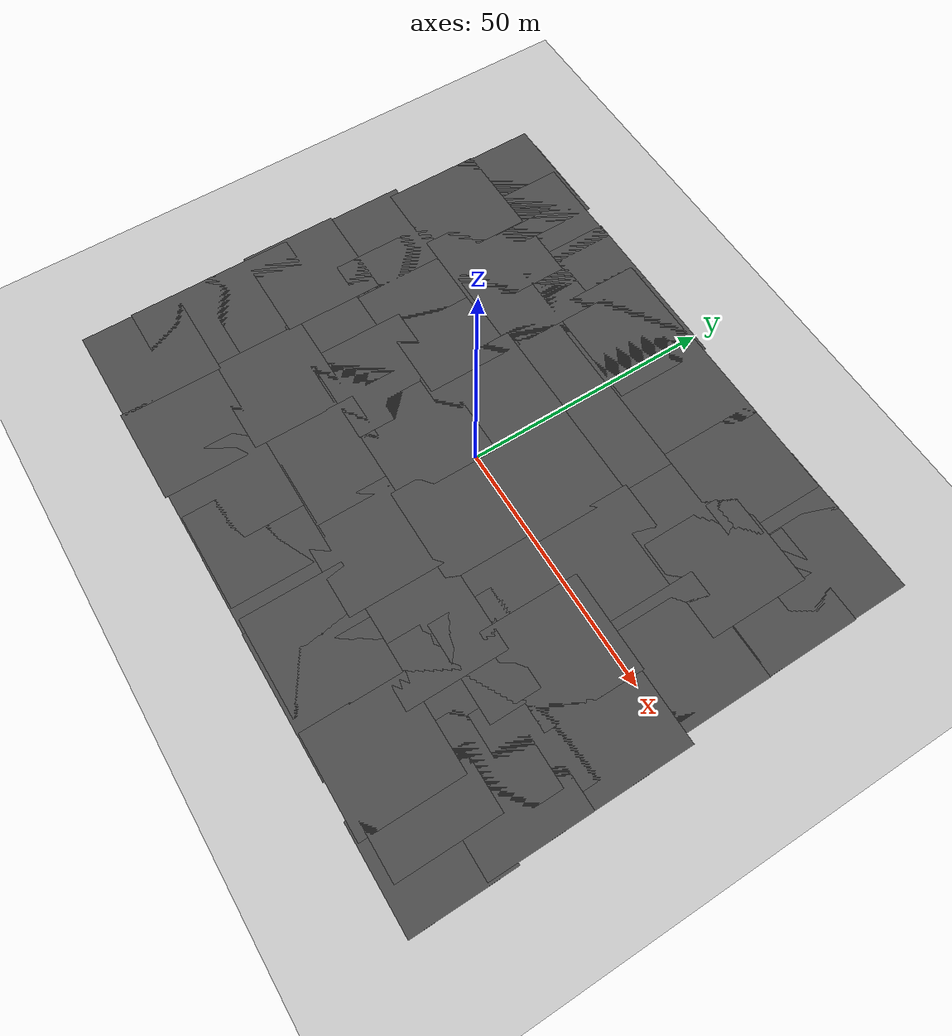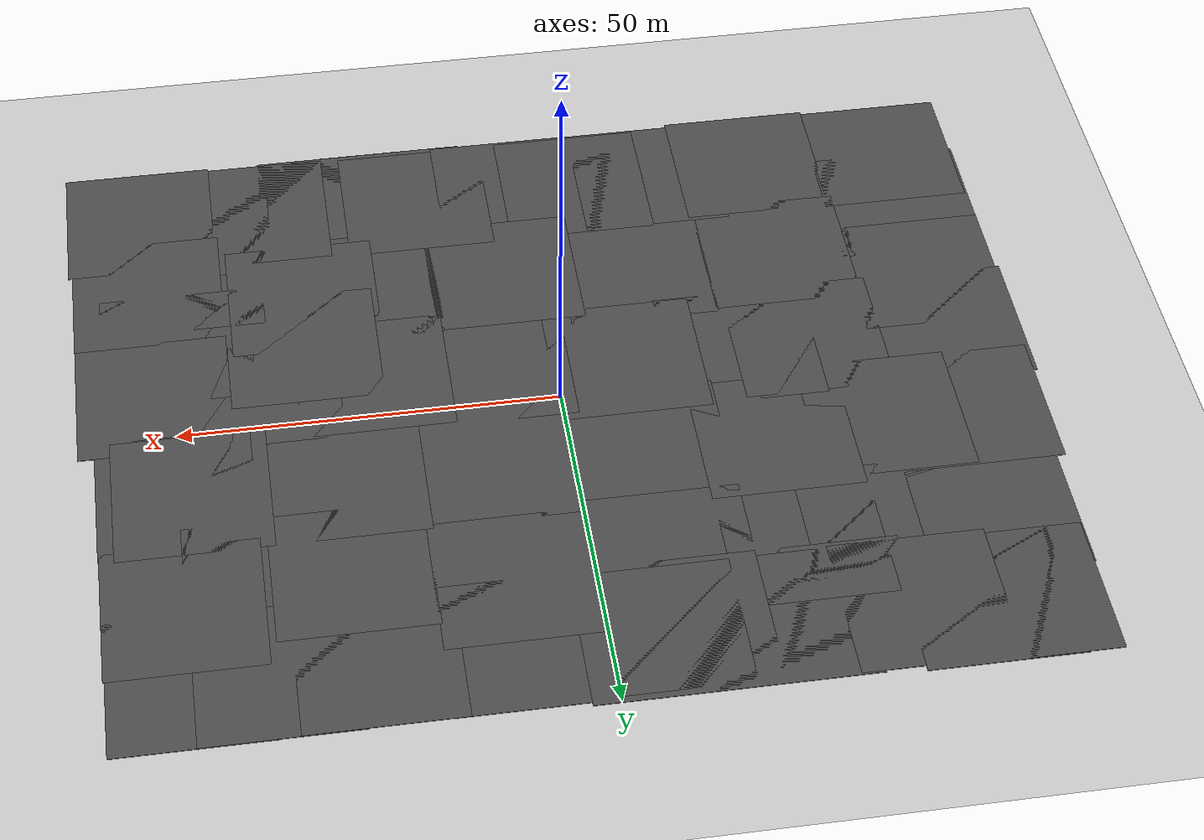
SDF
<sdf version="1.6">
 <world name="default">
  <light name="sun" type="directional">
   <pose>0 0 10 0 -0 0</pose>
   <diffuse>0.8 0.8 0.8 1</diffuse>
   <specular>0.2 0.2 0.2 1</specular>
   <attenuation>
    <range>1000</range>
    <constant>0.9</constant>
    <linear>0.01</linear>
    <quadratic>0.001</quadratic>
   </attenuation>
   <direction>-0.5 0.1 -0.9</direction>
  </light>
  <model name="ground_plane">
   <static>1</static>
   <link name="link">
    <collision name="collision">
     <geometry><plane><normal>0 0 1</normal><size>100 100</size></plane></geometry>
     <surface><friction><ode><mu>100</mu><mu2>50</mu2></ode></friction></surface>
    </collision>
    <visual name="visual">
     <cast_shadows>0</cast_shadows>
     <geometry><plane><normal>0 0 1</normal><size>100 100</size></plane></geometry>
     <material>
      <script><uri>file://media/materials/scripts/gazebo.material</uri><name>Gazebo/Grey</name></script>
     </material>
    </visual>
   </link>
  </model>
  <gravity>0 0 -9.8</gravity>
  <magnetic_field>6e-06 2.3e-05 -4.2e-05</magnetic_field>
  <atmosphere type="adiabatic"/>
  <physics name="default_physics" default="0" type="ode">
   <max_step_size>0.001</max_step_size>
   <real_time_factor>1</real_time_factor>
   <real_time_update_rate>1000</real_time_update_rate>
  </physics>
  <scene><ambient>0.4 0.4 0.4 1</ambient><background>0.7 0.7 0.7 1</background><shadows>1</shadows></scene>
  <audio><device>default</device></audio>
  <spherical_coordinates>
   <surface_model>EARTH_WGS84</surface_model>
   <latitude_deg>0</latitude_deg>
   <longitude_deg>0</longitude_deg>
   <elevation>0</elevation>
   <heading_deg>0</heading_deg>
  </spherical_coordinates>
  <model name="asphalt_plane">
   <static>1</static>
   <link name="link">
    <collision name="collision"><geometry><box><size>20 20 0.1</size></box></geometry></collision>
    <visual name="visual">
     <cast_shadows>0</cast_shadows>
     <geometry><box><size>20 20 0.1</size></box></geometry>
     <material>
      <script>
       <uri>model://asphalt_plane/materials/scripts</uri>
       <uri>model://asphalt_plane/materials/textures</uri>
       <name>vrc/asphalt</name>
      </script>
     </material>
    </visual>
   </link>
   <pose>9.94556 10.0179 0 0 -0 0</pose>
  </model>
  <model name="asphalt_plane_0">
   <static>1</static>
   <link name="link">
    <collision name="collision"><geometry><box><size>20 20 0.1</size></box></geometry></collision>
    <visual name="visual">
     <cast_shadows>0</cast_shadows>
     <geometry><box><size>20 20 0.1</size></box></geometry>
     <material>
      <script>
       <uri>model://asphalt_plane/materials/scripts</uri>
       <uri>model://asphalt_plane/materials/textures</uri>
       <name>vrc/asphalt</name>
      </script>
     </material>
    </visual>
   </link>
   <pose>28.9695 10.1396 0 0 -0 0</pose>
  </model>
  <model name="asphalt_plane_clone">
   <static>1</static>
   <link name="link">
    <collision name="collision"><geometry><box><size>20 20 0.1</size></box></geometry></collision>
    <visual name="visual">
     <cast_shadows>0</cast_shadows>
     <geometry><box><size>20 20 0.1</size></box></geometry>
     <material>
      <script>
       <uri>model://asphalt_plane/materials/scripts</uri>
       <uri>model://asphalt_plane/materials/textures</uri>
       <name>vrc/asphalt</name>
      </script>
     </material>
    </visual>
   </link>
   <pose>48.6117 10.1334 0 0 -0 0</pose>
  </model>
  <model name="asphalt_plane_clone_0">
   <static>1</static>
   <link name="link">
    <collision name="collision"><geometry><box><size>20 20 0.1</size></box></geometry></collision>
    <visual name="visual">
     <cast_shadows>0</cast_shadows>
     <geometry><box><size>20 20 0.1</size></box></geometry>
     <material>
      <script>
       <uri>model://asphalt_plane/materials/scripts</uri>
       <uri>model://asphalt_plane/materials/textures</uri>
       <name>vrc/asphalt</name>
      </script>
     </material>
    </visual>
   </link>
   <pose>9.90741 29.4526 0 0 -0 0</pose>
  </model>
  <model name="asphalt_plane_clone_1">
   <static>1</static>
   <link name="link">
    <collision name="collision"><geometry><box><size>20 20 0.1</size></box></geometry></collision>
    <visual name="visual">
     <cast_shadows>0</cast_shadows>
     <geometry><box><size>20 20 0.1</size></box></geometry>
     <material>
      <script>
       <uri>model://asphalt_plane/materials/scripts</uri>
       <uri>model://asphalt_plane/materials/textures</uri>
       <name>vrc/asphalt</name>
      </script>
     </material>
    </visual>
   </link>
   <pose>9.72617 39.7367 0 0 -0 0</pose>
  </model>
  <model name="asphalt_plane_clone_2">
   <static>1</static>
   <link name="link">
    <collision name="collision"><geometry><box><size>20 20 0.1</size></box></geometry></collision>
    <visual name="visual">
     <cast_shadows>0</cast_shadows>
     <geometry><box><size>20 20 0.1</size></box></geometry>
     <material>
      <script>
       <uri>model://asphalt_plane/materials/scripts</uri>
       <uri>model://asphalt_plane/materials/textures</uri>
       <name>vrc/asphalt</name>
      </script>
     </material>
    </visual>
   </link>
   <pose>27.7603 39.7037 0 0 -0 0</pose>
  </model>
  <model name="asphalt_plane_clone_3">
   <static>1</static>
   <link name="link">
    <collision name="collision"><geometry><box><size>20 20 0.1</size></box></geometry></collision>
    <visual name="visual">
     <cast_shadows>0</cast_shadows>
     <geometry><box><size>20 20 0.1</size></box></geometry>
     <material>
      <script>
       <uri>model://asphalt_plane/materials/scripts</uri>
       <uri>model://asphalt_plane/materials/textures</uri>
       <name>vrc/asphalt</name>
      </script>
     </material>
    </visual>
   </link>
   <pose>39.8939 39.8008 0 0 -0 0</pose>
  </model>
  <model name="asphalt_plane_clone_4">
   <static>1</static>
   <link name="link">
    <collision name="collision"><geometry><box><size>20 20 0.1</size></box></geometry></collision>
    <visual name="visual">
     <cast_shadows>0</cast_shadows>
     <geometry><box><size>20 20 0.1</size></box></geometry>
     <material>
      <script>
       <uri>model://asphalt_plane/materials/scripts</uri>
       <uri>model://asphalt_plane/materials/textures</uri>
       <name>vrc/asphalt</name>
      </script>
     </material>
    </visual>
   </link>
   <pose>50.2931 39.8649 0 0 -0 0</pose>
  </model>
  <model name="asphalt_plane_clone_5">
   <static>1</static>
   <link name="link">
    <collision name="collision"><geometry><box><size>20 20 0.1</size></box></geometry></collision>
    <visual name="visual">
     <cast_shadows>0</cast_shadows>
     <geometry><box><size>20 20 0.1</size></box></geometry>
     <material>
      <script>
       <uri>model://asphalt_plane/materials/scripts</uri>
       <uri>model://asphalt_plane/materials/textures</uri>
       <name>vrc/asphalt</name>
      </script>
     </material>
    </visual>
   </link>
   <pose>50.4864 28.6532 0 0 -0 0</pose>
  </model>
  <model name="asphalt_plane_clone_6">
   <static>1</static>
   <link name="link">
    <collision name="collision"><geometry><box><size>20 20 0.1</size></box></geometry></collision>
    <visual name="visual">
     <cast_shadows>0</cast_shadows>
     <geometry><box><size>20 20 0.1</size></box></geometry>
     <material>
      <script>
       <uri>model://asphalt_plane/materials/scripts</uri>
       <uri>model://asphalt_plane/materials/textures</uri>
       <name>vrc/asphalt</name>
      </script>
     </material>
    </visual>
   </link>
   <pose>29.6268 25.404 0 0 -0 0</pose>
  </model>
  <model name="asphalt_plane_clone_7">
   <static>1</static>
   <link name="link">
    <collision name="collision"><geometry><box><size>20 20 0.1</size></box></geometry></collision>
    <visual name="visual">
     <cast_shadows>0</cast_shadows>
     <geometry><box><size>20 20 0.1</size></box></geometry>
     <material>
      <script>
       <uri>model://asphalt_plane/materials/scripts</uri>
       <uri>model://asphalt_plane/materials/textures</uri>
       <name>vrc/asphalt</name>
      </script>
     </material>
    </visual>
   </link>
   <pose>40.2488 25.9331 0 0 -0 0</pose>
  </model>
  <model name="asphalt_plane_clone_8">
   <static>1</static>
   <link name="link">
    <collision name="collision"><geometry><box><size>20 20 0.1</size></box></geometry></collision>
    <visual name="visual">
     <cast_shadows>0</cast_shadows>
     <geometry><box><size>20 20 0.1</size></box></geometry>
     <material>
      <script>
       <uri>model://asphalt_plane/materials/scripts</uri>
       <uri>model://asphalt_plane/materials/textures</uri>
       <name>vrc/asphalt</name>
      </script>
     </material>
    </visual>
   </link>
   <pose>50.5794 9.93495 0 0 -0 0</pose>
  </model>
  <model name="asphalt_plane_1">
   <static>1</static>
   <link name="link">
    <collision name="collision"><geometry><box><size>20 20 0.1</size></box></geometry></collision>
    <visual name="visual">
     <cast_shadows>0</cast_shadows>
     <geometry><box><size>20 20 0.1</size></box></geometry>
     <material>
      <script>
       <uri>model://asphalt_plane/materials/scripts</uri>
       <uri>model://asphalt_plane/materials/textures</uri>
       <name>vrc/asphalt</name>
      </script>
     </material>
    </visual>
   </link>
   <pose>-9.89743 9.70966 0 0 -0 0</pose>
  </model>
  <model name="asphalt_plane_1_clone">
   <static>1</static>
   <link name="link">
    <collision name="collision"><geometry><box><size>20 20 0.1</size></box></geometry></collision>
    <visual name="visual">
     <cast_shadows>0</cast_shadows>
     <geometry><box><size>20 20 0.1</size></box></geometry>
     <material>
      <script>
       <uri>model://asphalt_plane/materials/scripts</uri>
       <uri>model://asphalt_plane/materials/textures</uri>
       <name>vrc/asphalt</name>
      </script>
     </material>
    </visual>
   </link>
   <pose>-9.99884 28.2503 0 0 -0 0</pose>
  </model>
  <model name="asphalt_plane_1_clone_0">
   <static>1</static>
   <link name="link">
    <collision name="collision"><geometry><box><size>20 20 0.1</size></box></geometry></collision>
    <visual name="visual">
     <cast_shadows>0</cast_shadows>
     <geometry><box><size>20 20 0.1</size></box></geometry>
     <material>
      <script>
       <uri>model://asphalt_plane/materials/scripts</uri>
       <uri>model://asphalt_plane/materials/textures</uri>
       <name>vrc/asphalt</name>
      </script>
     </material>
    </visual>
   </link>
   <pose>-9.90688 39.3681 0 0 -0 0</pose>
  </model>
  <model name="asphalt_plane_1_clone_1">
   <static>1</static>
   <link name="link">
    <collision name="collision"><geometry><box><size>20 20 0.1</size></box></geometry></collision>
    <visual name="visual">
     <cast_shadows>0</cast_shadows>
     <geometry><box><size>20 20 0.1</size></box></geometry>
     <material>
      <script>
       <uri>model://asphalt_plane/materials/scripts</uri>
       <uri>model://asphalt_plane/materials/textures</uri>
       <name>vrc/asphalt</name>
      </script>
     </material>
    </visual>
   </link>
   <pose>-27.8869 39.4852 0 0 -0 0</pose>
  </model>
  <model name="asphalt_plane_1_clone_2">
   <static>1</static>
   <link name="link">
    <collision name="collision"><geometry><box><size>20 20 0.1</size></box></geometry></collision>
    <visual name="visual">
     <cast_shadows>0</cast_shadows>
     <geometry><box><size>20 20 0.1</size></box></geometry>
     <material>
      <script>
       <uri>model://asphalt_plane/materials/scripts</uri>
       <uri>model://asphalt_plane/materials/textures</uri>
       <name>vrc/asphalt</name>
      </script>
     </material>
    </visual>
   </link>
   <pose>-38.8063 39.9788 0 0 -0 0</pose>
  </model>
  <model name="asphalt_plane_1_clone_3">
   <static>1</static>
   <link name="link">
    <collision name="collision"><geometry><box><size>20 20 0.1</size></box></geometry></collision>
    <visual name="visual">
     <cast_shadows>0</cast_shadows>
     <geometry><box><size>20 20 0.1</size></box></geometry>
     <material>
      <script>
       <uri>model://asphalt_plane/materials/scripts</uri>
       <uri>model://asphalt_plane/materials/textures</uri>
       <name>vrc/asphalt</name>
      </script>
     </material>
    </visual>
   </link>
   <pose>-46.6677 40.7361 0 0 -0 0</pose>
  </model>
  <model name="asphalt_plane_1_clone_4">
   <static>1</static>
   <link name="link">
    <collision name="collision"><geometry><box><size>20 20 0.1</size></box></geometry></collision>
    <visual name="visual">
     <cast_shadows>0</cast_shadows>
     <geometry><box><size>20 20 0.1</size></box></geometry>
     <material>
      <script>
       <uri>model://asphalt_plane/materials/scripts</uri>
       <uri>model://asphalt_plane/materials/textures</uri>
       <name>vrc/asphalt</name>
      </script>
     </material>
    </visual>
   </link>
   <pose>-51.0642 40.6241 0 0 -0 0</pose>
  </model>
  <model name="asphalt_plane_1_clone_5">
   <static>1</static>
   <link name="link">
    <collision name="collision"><geometry><box><size>20 20 0.1</size></box></geometry></collision>
    <visual name="visual">
     <cast_shadows>0</cast_shadows>
     <geometry><box><size>20 20 0.1</size></box></geometry>
     <material>
      <script>
       <uri>model://asphalt_plane/materials/scripts</uri>
       <uri>model://asphalt_plane/materials/textures</uri>
       <name>vrc/asphalt</name>
      </script>
     </material>
    </visual>
   </link>
   <pose>-51.2435 27.2029 0 0 -0 0</pose>
  </model>
  <model name="asphalt_plane_1_clone_6">
   <static>1</static>
   <link name="link">
    <collision name="collision"><geometry><box><size>20 20 0.1</size></box></geometry></collision>
    <visual name="visual">
     <cast_shadows>0</cast_shadows>
     <geometry><box><size>20 20 0.1</size></box></geometry>
     <material>
      <script>
       <uri>model://asphalt_plane/materials/scripts</uri>
       <uri>model://asphalt_plane/materials/textures</uri>
       <name>vrc/asphalt</name>
      </script>
     </material>
    </visual>
   </link>
   <pose>-36.9175 27.3759 0 0 -0 0</pose>
  </model>
  <model name="asphalt_plane_1_clone_7">
   <static>1</static>
   <link name="link">
    <collision name="collision"><geometry><box><size>20 20 0.1</size></box></geometry></collision>
    <visual name="visual">
     <cast_shadows>0</cast_shadows>
     <geometry><box><size>20 20 0.1</size></box></geometry>
     <material>
      <script>
       <uri>model://asphalt_plane/materials/scripts</uri>
       <uri>model://asphalt_plane/materials/textures</uri>
       <name>vrc/asphalt</name>
      </script>
     </material>
    </visual>
   </link>
   <pose>-26.43 28.2152 0 0 -0 0</pose>
  </model>
  <model name="asphalt_plane_1_clone_8">
   <static>1</static>
   <link name="link">
    <collision name="collision"><geometry><box><size>20 20 0.1</size></box></geometry></collision>
    <visual name="visual">
     <cast_shadows>0</cast_shadows>
     <geometry><box><size>20 20 0.1</size></box></geometry>
     <material>
      <script>
       <uri>model://asphalt_plane/materials/scripts</uri>
       <uri>model://asphalt_plane/materials/textures</uri>
       <name>vrc/asphalt</name>
      </script>
     </material>
    </visual>
   </link>
   <pose>-26.3245 10.2479 0 0 -0 0</pose>
  </model>
  <model name="asphalt_plane_1_clone_9">
   <static>1</static>
   <link name="link">
    <collision name="collision"><geometry><box><size>20 20 0.1</size></box></geometry></collision>
    <visual name="visual">
     <cast_shadows>0</cast_shadows>
     <geometry><box><size>20 20 0.1</size></box></geometry>
     <material>
      <script>
       <uri>model://asphalt_plane/materials/scripts</uri>
       <uri>model://asphalt_plane/materials/textures</uri>
       <name>vrc/asphalt</name>
      </script>
     </material>
    </visual>
   </link>
   <pose>-41.1698 8.91625 0 0 -0 0</pose>
  </model>
  <model name="asphalt_plane_1_clone_10">
   <static>1</static>
   <link name="link">
    <collision name="collision"><geometry><box><size>20 20 0.1</size></box></geometry></collision>
    <visual name="visual">
     <cast_shadows>0</cast_shadows>
     <geometry><box><size>20 20 0.1</size></box></geometry>
     <material>
      <script>
       <uri>model://asphalt_plane/materials/scripts</uri>
       <uri>model://asphalt_plane/materials/textures</uri>
       <name>vrc/asphalt</name>
      </script>
     </material>
    </visual>
   </link>
   <pose>-52.4427 9.20355 0 0 -0 0</pose>
  </model>
  <model name="asphalt_plane_1_clone_11">
   <static>1</static>
   <link name="link">
    <collision name="collision"><geometry><box><size>20 20 0.1</size></box></geometry></collision>
    <visual name="visual">
     <cast_shadows>0</cast_shadows>
     <geometry><box><size>20 20 0.1</size></box></geometry>
     <material>
      <script>
       <uri>model://asphalt_plane/materials/scripts</uri>
       <uri>model://asphalt_plane/materials/textures</uri>
       <name>vrc/asphalt</name>
      </script>
     </material>
    </visual>
   </link>
   <pose>-52.9447 -6.06653 0 0 -0 0</pose>
  </model>
  <model name="asphalt_plane_1_clone_12">
   <static>1</static>
   <link name="link">
    <collision name="collision"><geometry><box><size>20 20 0.1</size></box></geometry></collision>
    <visual name="visual">
     <cast_shadows>0</cast_shadows>
     <geometry><box><size>20 20 0.1</size></box></geometry>
     <material>
      <script>
       <uri>model://asphalt_plane/materials/scripts</uri>
       <uri>model://asphalt_plane/materials/textures</uri>
       <name>vrc/asphalt</name>
      </script>
     </material>
    </visual>
   </link>
   <pose>-52.4437 -16.7134 0 0 -0 0</pose>
  </model>
  <model name="asphalt_plane_1_clone_13">
   <static>1</static>
   <link name="link">
    <collision name="collision"><geometry><box><size>20 20 0.1</size></box></geometry></collision>
    <visual name="visual">
     <cast_shadows>0</cast_shadows>
     <geometry><box><size>20 20 0.1</size></box></geometry>
     <material>
      <script>
       <uri>model://asphalt_plane/materials/scripts</uri>
       <uri>model://asphalt_plane/materials/textures</uri>
       <name>vrc/asphalt</name>
      </script>
     </material>
    </visual>
   </link>
   <pose>-52.4144 -30.9668 0 0 -0 0</pose>
  </model>
  <model name="asphalt_plane_1_clone_14">
   <static>1</static>
   <link name="link">
    <collision name="collision"><geometry><box><size>20 20 0.1</size></box></geometry></collision>
    <visual name="visual">
     <cast_shadows>0</cast_shadows>
     <geometry><box><size>20 20 0.1</size></box></geometry>
     <material>
      <script>
       <uri>model://asphalt_plane/materials/scripts</uri>
       <uri>model://asphalt_plane/materials/textures</uri>
       <name>vrc/asphalt</name>
      </script>
     </material>
    </visual>
   </link>
   <pose>-52.1095 -41.3911 0 0 -0 0</pose>
  </model>
  <model name="asphalt_plane_1_clone_15">
   <static>1</static>
   <link name="link">
    <collision name="collision"><geometry><box><size>20 20 0.1</size></box></geometry></collision>
    <visual name="visual">
     <cast_shadows>0</cast_shadows>
     <geometry><box><size>20 20 0.1</size></box></geometry>
     <material>
      <script>
       <uri>model://asphalt_plane/materials/scripts</uri>
       <uri>model://asphalt_plane/materials/textures</uri>
       <name>vrc/asphalt</name>
      </script>
     </material>
    </visual>
   </link>
   <pose>-32.6987 -41.8431 0 0 -0 0</pose>
  </model>
  <model name="asphalt_plane_1_clone_16">
   <static>1</static>
   <link name="link">
    <collision name="collision"><geometry><box><size>20 20 0.1</size></box></geometry></collision>
    <visual name="visual">
     <cast_shadows>0</cast_shadows>
     <geometry><box><size>20 20 0.1</size></box></geometry>
     <material>
      <script>
       <uri>model://asphalt_plane/materials/scripts</uri>
       <uri>model://asphalt_plane/materials/textures</uri>
       <name>vrc/asphalt</name>
      </script>
     </material>
    </visual>
   </link>
   <pose>-18.2644 -41.2859 0 0 -0 0</pose>
  </model>
  <model name="asphalt_plane_1_clone_17">
   <static>1</static>
   <link name="link">
    <collision name="collision"><geometry><box><size>20 20 0.1</size></box></geometry></collision>
    <visual name="visual">
     <cast_shadows>0</cast_shadows>
     <geometry><box><size>20 20 0.1</size></box></geometry>
     <material>
      <script>
       <uri>model://asphalt_plane/materials/scripts</uri>
       <uri>model://asphalt_plane/materials/textures</uri>
       <name>vrc/asphalt</name>
      </script>
     </material>
    </visual>
   </link>
   <pose>-7.62501 -41.016 0 0 -0 0</pose>
  </model>
  <model name="asphalt_plane_1_clone_18">
   <static>1</static>
   <link name="link">
    <collision name="collision"><geometry><box><size>20 20 0.1</size></box></geometry></collision>
    <visual name="visual">
     <cast_shadows>0</cast_shadows>
     <geometry><box><size>20 20 0.1</size></box></geometry>
     <material>
      <script>
       <uri>model://asphalt_plane/materials/scripts</uri>
       <uri>model://asphalt_plane/materials/textures</uri>
       <name>vrc/asphalt</name>
      </script>
     </material>
    </visual>
   </link>
   <pose>1.50892 -41.3548 0 0 -0 0</pose>
  </model>
  <model name="asphalt_plane_1_clone_19">
   <static>1</static>
   <link name="link">
    <collision name="collision"><geometry><box><size>20 20 0.1</size></box></geometry></collision>
    <visual name="visual">
     <cast_shadows>0</cast_shadows>
     <geometry><box><size>20 20 0.1</size></box></geometry>
     <material>
      <script>
       <uri>model://asphalt_plane/materials/scripts</uri>
       <uri>model://asphalt_plane/materials/textures</uri>
       <name>vrc/asphalt</name>
      </script>
     </material>
    </visual>
   </link>
   <pose>14.8033 -40.8273 0 0 -0 0</pose>
  </model>
  <model name="asphalt_plane_1_clone_20">
   <static>1</static>
   <link name="link">
    <collision name="collision"><geometry><box><size>20 20 0.1</size></box></geometry></collision>
    <visual name="visual">
     <cast_shadows>0</cast_shadows>
     <geometry><box><size>20 20 0.1</size></box></geometry>
     <material>
      <script>
       <uri>model://asphalt_plane/materials/scripts</uri>
       <uri>model://asphalt_plane/materials/textures</uri>
       <name>vrc/asphalt</name>
      </script>
     </material>
    </visual>
   </link>
   <pose>26.2268 -41.4878 0 0 -0 0</pose>
  </model>
  <model name="asphalt_plane_1_clone_21">
   <static>1</static>
   <link name="link">
    <collision name="collision"><geometry><box><size>20 20 0.1</size></box></geometry></collision>
    <visual name="visual">
     <cast_shadows>0</cast_shadows>
     <geometry><box><size>20 20 0.1</size></box></geometry>
     <material>
      <script>
       <uri>model://asphalt_plane/materials/scripts</uri>
       <uri>model://asphalt_plane/materials/textures</uri>
       <name>vrc/asphalt</name>
      </script>
     </material>
    </visual>
   </link>
   <pose>37.2461 -41.2077 0 0 -0 0</pose>
  </model>
  <model name="asphalt_plane_1_clone_22">
   <static>1</static>
   <link name="link">
    <collision name="collision"><geometry><box><size>20 20 0.1</size></box></geometry></collision>
    <visual name="visual">
     <cast_shadows>0</cast_shadows>
     <geometry><box><size>20 20 0.1</size></box></geometry>
     <material>
      <script>
       <uri>model://asphalt_plane/materials/scripts</uri>
       <uri>model://asphalt_plane/materials/textures</uri>
       <name>vrc/asphalt</name>
      </script>
     </material>
    </visual>
   </link>
   <pose>45.3771 -39.4809 0 0 -0 0</pose>
  </model>
  <model name="asphalt_plane_1_clone_23">
   <static>1</static>
   <link name="link">
    <collision name="collision"><geometry><box><size>20 20 0.1</size></box></geometry></collision>
    <visual name="visual">
     <cast_shadows>0</cast_shadows>
     <geometry><box><size>20 20 0.1</size></box></geometry>
     <material>
      <script>
       <uri>model://asphalt_plane/materials/scripts</uri>
       <uri>model://asphalt_plane/materials/textures</uri>
       <name>vrc/asphalt</name>
      </script>
     </material>
    </visual>
   </link>
   <pose>47.2475 -29.3834 0 0 -0 0</pose>
  </model>
  <model name="asphalt_plane_1_clone_24">
   <static>1</static>
   <link name="link">
    <collision name="collision"><geometry><box><size>20 20 0.1</size></box></geometry></collision>
    <visual name="visual">
     <cast_shadows>0</cast_shadows>
     <geometry><box><size>20 20 0.1</size></box></geometry>
     <material>
      <script>
       <uri>model://asphalt_plane/materials/scripts</uri>
       <uri>model://asphalt_plane/materials/textures</uri>
       <name>vrc/asphalt</name>
      </script>
     </material>
    </visual>
   </link>
   <pose>49.249 -16.2267 0 0 -0 0</pose>
  </model>
  <model name="asphalt_plane_1_clone_25">
   <static>1</static>
   <link name="link">
    <collision name="collision"><geometry><box><size>20 20 0.1</size></box></geometry></collision>
    <visual name="visual">
     <cast_shadows>0</cast_shadows>
     <geometry><box><size>20 20 0.1</size></box></geometry>
     <material>
      <script>
       <uri>model://asphalt_plane/materials/scripts</uri>
       <uri>model://asphalt_plane/materials/textures</uri>
       <name>vrc/asphalt</name>
      </script>
     </material>
    </visual>
   </link>
   <pose>52.6802 -7.57688 0 0 -0 0</pose>
  </model>
  <model name="asphalt_plane_1_clone_26">
   <static>1</static>
   <link name="link">
    <collision name="collision"><geometry><box><size>20 20 0.1</size></box></geometry></collision>
    <visual name="visual">
     <cast_shadows>0</cast_shadows>
     <geometry><box><size>20 20 0.1</size></box></geometry>
     <material>
      <script>
       <uri>model://asphalt_plane/materials/scripts</uri>
       <uri>model://asphalt_plane/materials/textures</uri>
       <name>vrc/asphalt</name>
      </script>
     </material>
    </visual>
   </link>
   <pose>38.377 -7.17767 0 0 -0 0</pose>
  </model>
  <model name="asphalt_plane_1_clone_27">
   <static>1</static>
   <link name="link">
    <collision name="collision"><geometry><box><size>20 20 0.1</size></box></geometry></collision>
    <visual name="visual">
     <cast_shadows>0</cast_shadows>
     <geometry><box><size>20 20 0.1</size></box></geometry>
     <material>
      <script>
       <uri>model://asphalt_plane/materials/scripts</uri>
       <uri>model://asphalt_plane/materials/textures</uri>
       <name>vrc/asphalt</name>
      </script>
     </material>
    </visual>
   </link>
   <pose>32.6221 -13.9828 0 0 -0 0</pose>
  </model>
  <model name="asphalt_plane_1_clone_28">
   <static>1</static>
   <link name="link">
    <collision name="collision"><geometry><box><size>20 20 0.1</size></box></geometry></collision>
    <visual name="visual">
     <cast_shadows>0</cast_shadows>
     <geometry><box><size>20 20 0.1</size></box></geometry>
     <material>
      <script>
       <uri>model://asphalt_plane/materials/scripts</uri>
       <uri>model://asphalt_plane/materials/textures</uri>
       <name>vrc/asphalt</name>
      </script>
     </material>
    </visual>
   </link>
   <pose>31.8923 -23.5073 0 0 -0 0</pose>
  </model>
  <model name="asphalt_plane_1_clone_29">
   <static>1</static>
   <link name="link">
    <collision name="collision"><geometry><box><size>20 20 0.1</size></box></geometry></collision>
    <visual name="visual">
     <cast_shadows>0</cast_shadows>
     <geometry><box><size>20 20 0.1</size></box></geometry>
     <material>
      <script>
       <uri>model://asphalt_plane/materials/scripts</uri>
       <uri>model://asphalt_plane/materials/textures</uri>
       <name>vrc/asphalt</name>
      </script>
     </material>
    </visual>
   </link>
   <pose>23.5419 -24.4809 0 0 -0 0</pose>
  </model>
  <model name="asphalt_plane_1_clone_30">
   <static>1</static>
   <link name="link">
    <collision name="collision"><geometry><box><size>20 20 0.1</size></box></geometry></collision>
    <visual name="visual">
     <cast_shadows>0</cast_shadows>
     <geometry><box><size>20 20 0.1</size></box></geometry>
     <material>
      <script>
       <uri>model://asphalt_plane/materials/scripts</uri>
       <uri>model://asphalt_plane/materials/textures</uri>
       <name>vrc/asphalt</name>
      </script>
     </material>
    </visual>
   </link>
   <pose>23.9026 -7.5445 0 0 -0 0</pose>
  </model>
  <model name="asphalt_plane_1_clone_31">
   <static>1</static>
   <link name="link">
    <collision name="collision"><geometry><box><size>20 20 0.1</size></box></geometry></collision>
    <visual name="visual">
     <cast_shadows>0</cast_shadows>
     <geometry><box><size>20 20 0.1</size></box></geometry>
     <material>
      <script>
       <uri>model://asphalt_plane/materials/scripts</uri>
       <uri>model://asphalt_plane/materials/textures</uri>
       <name>vrc/asphalt</name>
      </script>
     </material>
    </visual>
   </link>
   <pose>8 -7 0 0 -0 0</pose>
  </model>
  <model name="asphalt_plane_1_clone_32">
   <static>1</static>
   <link name="link">
    <collision name="collision"><geometry><box><size>20 20 0.1</size></box></geometry></collision>
    <visual name="visual">
     <cast_shadows>0</cast_shadows>
     <geometry><box><size>20 20 0.1</size></box></geometry>
     <material>
      <script>
       <uri>model://asphalt_plane/materials/scripts</uri>
       <uri>model://asphalt_plane/materials/textures</uri>
       <name>vrc/asphalt</name>
      </script>
     </material>
    </visual>
   </link>
   <pose>4.51028 -24.5826 0 0 -0 0</pose>
  </model>
  <model name="asphalt_plane_1_clone_33">
   <static>1</static>
   <link name="link">
    <collision name="collision"><geometry><box><size>20 20 0.1</size></box></geometry></collision>
    <visual name="visual">
     <cast_shadows>0</cast_shadows>
     <geometry><box><size>20 20 0.1</size></box></geometry>
     <material>
      <script>
       <uri>model://asphalt_plane/materials/scripts</uri>
       <uri>model://asphalt_plane/materials/textures</uri>
       <name>vrc/asphalt</name>
      </script>
     </material>
    </visual>
   </link>
   <pose>-13.4255 -22.9481 0 0 -0 0</pose>
  </model>
  <model name="asphalt_plane_1_clone_34">
   <static>1</static>
   <link name="link">
    <collision name="collision"><geometry><box><size>20 20 0.1</size></box></geometry></collision>
    <visual name="visual">
     <cast_shadows>0</cast_shadows>
     <geometry><box><size>20 20 0.1</size></box></geometry>
     <material>
      <script>
       <uri>model://asphalt_plane/materials/scripts</uri>
       <uri>model://asphalt_plane/materials/textures</uri>
       <name>vrc/asphalt</name>
      </script>
     </material>
    </visual>
   </link>
   <pose>-9.49081 -5.91654 0 0 -0 0</pose>
  </model>
  <model name="asphalt_plane_1_clone_35">
   <static>1</static>
   <link name="link">
    <collision name="collision"><geometry><box><size>20 20 0.1</size></box></geometry></collision>
    <visual name="visual">
     <cast_shadows>0</cast_shadows>
     <geometry><box><size>20 20 0.1</size></box></geometry>
     <material>
      <script>
       <uri>model://asphalt_plane/materials/scripts</uri>
       <uri>model://asphalt_plane/materials/textures</uri>
       <name>vrc/asphalt</name>
      </script>
     </material>
    </visual>
   </link>
   <pose>-24.9246 -6.11724 0 0 -0 0</pose>
  </model>
  <model name="asphalt_plane_1_clone_36">
   <static>1</static>
   <link name="link">
    <collision name="collision"><geometry><box><size>20 20 0.1</size></box></geometry></collision>
    <visual name="visual">
     <cast_shadows>0</cast_shadows>
     <geometry><box><size>20 20 0.1</size></box></geometry>
     <material>
      <script>
       <uri>model://asphalt_plane/materials/scripts</uri>
       <uri>model://asphalt_plane/materials/textures</uri>
       <name>vrc/asphalt</name>
      </script>
     </material>
    </visual>
   </link>
   <pose>-34.0629 -6.54036 0 0 -0 0</pose>
  </model>
  <model name="asphalt_plane_1_clone_37">
   <static>1</static>
   <link name="link">
    <collision name="collision"><geometry><box><size>20 20 0.1</size></box></geometry></collision>
    <visual name="visual">
     <cast_shadows>0</cast_shadows>
     <geometry><box><size>20 20 0.1</size></box></geometry>
     <material>
      <script>
       <uri>model://asphalt_plane/materials/scripts</uri>
       <uri>model://asphalt_plane/materials/textures</uri>
       <name>vrc/asphalt</name>
      </script>
     </material>
    </visual>
   </link>
   <pose>-33.2115 -23.4503 0 0 -0 0</pose>
  </model>
  <model name="asphalt_plane_1_clone_38">
   <static>1</static>
   <link name="link">
    <collision name="collision"><geometry><box><size>20 20 0.1</size></box></geometry></collision>
    <visual name="visual">
     <cast_shadows>0</cast_shadows>
     <geometry><box><size>20 20 0.1</size></box></geometry>
     <material>
      <script>
       <uri>model://asphalt_plane/materials/scripts</uri>
       <uri>model://asphalt_plane/materials/textures</uri>
       <name>vrc/asphalt</name>
      </script>
     </material>
    </visual>
   </link>
   <pose>52.7164 -27.1566 0 0 -0 0</pose>
  </model>
  <model name="asphalt_plane_1_clone_39">
   <static>1</static>
   <link name="link">
    <collision name="collision"><geometry><box><size>20 20 0.1</size></box></geometry></collision>
    <visual name="visual">
     <cast_shadows>0</cast_shadows>
     <geometry><box><size>20 20 0.1</size></box></geometry>
     <material>
      <script>
       <uri>model://asphalt_plane/materials/scripts</uri>
       <uri>model://asphalt_plane/materials/textures</uri>
       <name>vrc/asphalt</name>
      </script>
     </material>
    </visual>
   </link>
   <pose>53.2245 -41.563 0 0 -0 0</pose>
  </model>
  <model name="asphalt_plane_1_clone_40">
   <static>1</static>
   <link name="link">
    <collision name="collision"><geometry><box><size>20 20 0.1</size></box></geometry></collision>
    <visual name="visual">
     <cast_shadows>0</cast_shadows>
     <geometry><box><size>20 20 0.1</size></box></geometry>
     <material>
      <script>
       <uri>model://asphalt_plane/materials/scripts</uri>
       <uri>model://asphalt_plane/materials/textures</uri>
       <name>vrc/asphalt</name>
      </script>
     </material>
    </visual>
   </link>
   <pose>17.4825 -41.5197 0 0 -0 0</pose>
  </model>
  <model name="asphalt_plane_1_clone_41">
   <static>1</static>
   <link name="link">
    <collision name="collision"><geometry><box><size>20 20 0.1</size></box></geometry></collision>
    <visual name="visual">
     <cast_shadows>0</cast_shadows>
     <geometry><box><size>20 20 0.1</size></box></geometry>
     <material>
      <script>
       <uri>model://asphalt_plane/materials/scripts</uri>
       <uri>model://asphalt_plane/materials/textures</uri>
       <name>vrc/asphalt</name>
      </script>
     </material>
    </visual>
   </link>
   <pose>-6.487 40.2256 0 0 -0 0</pose>
  </model>
  <model name="asphalt_plane_1_clone_42">
   <static>1</static>
   <link name="link">
    <collision name="collision"><geometry><box><size>20 20 0.1</size></box></geometry></collision>
    <visual name="visual">
     <cast_shadows>0</cast_shadows>
     <geometry><box><size>20 20 0.1</size></box></geometry>
     <material>
      <script>
       <uri>model://asphalt_plane/materials/scripts</uri>
       <uri>model://asphalt_plane/materials/textures</uri>
       <name>vrc/asphalt</name>
      </script>
     </material>
    </visual>
   </link>
   <pose>-21.7889 40.2196 0 0 -0 0</pose>
  </model>
 </world>
</sdf>
